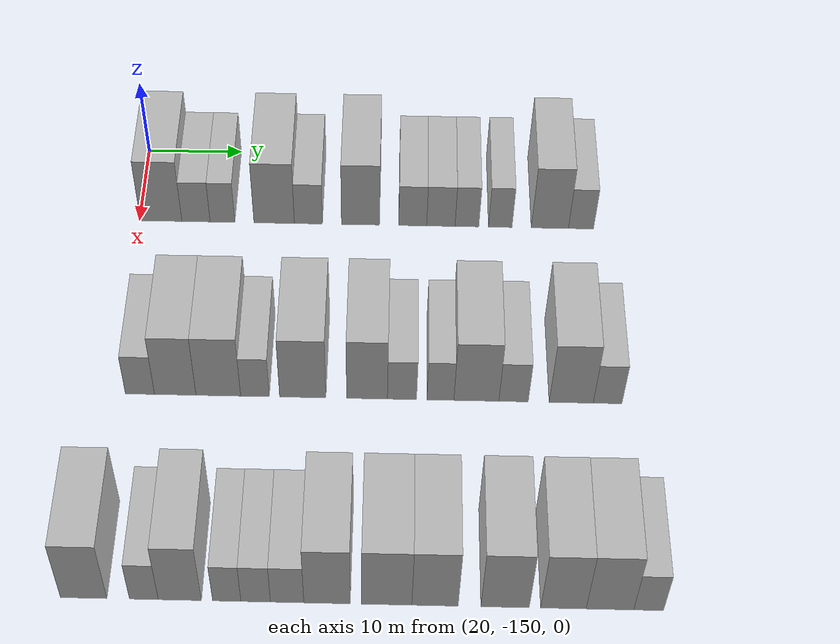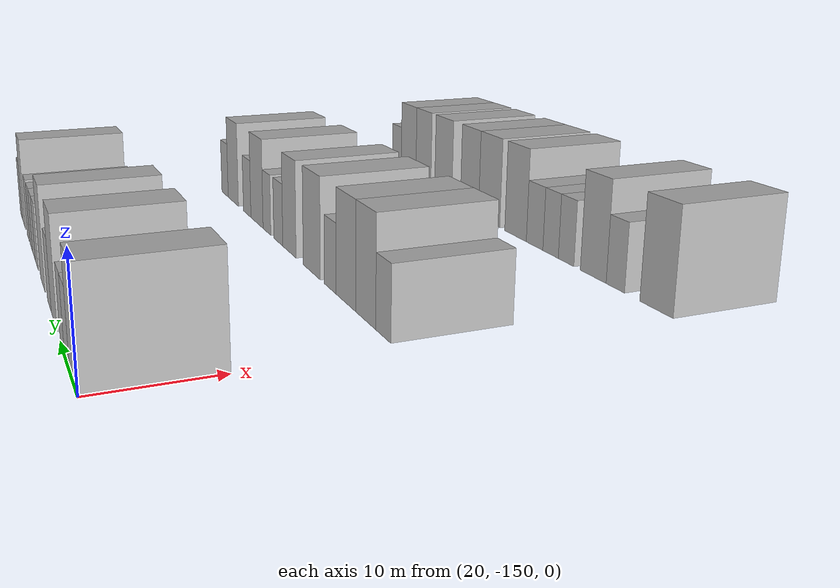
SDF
<sdf version="1.6">
 <world name="default">
  <model name="building_26">
   <static>1</static>
   <pose>25.0000 -147.7740 0 0.000000 0.000000 0.000000</pose>
   <link name="link">
    <pose>0 0 4.50 0 0 0</pose>
    <collision name="collision"><geometry><box><size>10.0000 4.3311 9.0000</size></box></geometry></collision>
    <visual name="visual">
     <cast_shadows>0</cast_shadows>
     <geometry><box><size>10.0000 4.3311 9.0000</size></box></geometry>
     <material>
      <script>
       <uri>model://HANNAS_wall/materials/scripts</uri>
       <uri>model://HANNAS_wall/materials/textures</uri>
       <name>vrc/HANNAS_wall</name>
      </script>
     </material>
    </visual>
   </link>
  </model>
  <model name="building_27">
   <static>1</static>
   <pose>25.0000 -144.1327 0 0.000000 0.000000 0.000000</pose>
   <link name="link">
    <pose>0 0 3.00 0 0 0</pose>
    <collision name="collision"><geometry><box><size>10.0000 2.9514 6.0000</size></box></geometry></collision>
    <visual name="visual">
     <cast_shadows>0</cast_shadows>
     <geometry><box><size>10.0000 2.9514 6.0000</size></box></geometry>
     <material>
      <script>
       <uri>model://HANNAS_wall/materials/scripts</uri>
       <uri>model://HANNAS_wall/materials/textures</uri>
       <name>vrc/HANNAS_wall</name>
      </script>
     </material>
    </visual>
   </link>
  </model>
  <model name="building_28">
   <static>1</static>
   <pose>25.0000 -141.3631 0 0.000000 0.000000 0.000000</pose>
   <link name="link">
    <pose>0 0 3.00 0 0 0</pose>
    <collision name="collision"><geometry><box><size>10.0000 2.5877 6.0000</size></box></geometry></collision>
    <visual name="visual">
     <cast_shadows>0</cast_shadows>
     <geometry><box><size>10.0000 2.5877 6.0000</size></box></geometry>
     <material>
      <script>
       <uri>model://HANNAS_wall/materials/scripts</uri>
       <uri>model://HANNAS_wall/materials/textures</uri>
       <name>vrc/HANNAS_wall</name>
      </script>
     </material>
    </visual>
   </link>
  </model>
  <model name="building_29">
   <static>1</static>
   <pose>25.0000 -135.9635 0 0.000000 0.000000 0.000000</pose>
   <link name="link">
    <pose>0 0 4.50 0 0 0</pose>
    <collision name="collision"><geometry><box><size>10.0000 4.2116 9.0000</size></box></geometry></collision>
    <visual name="visual">
     <cast_shadows>0</cast_shadows>
     <geometry><box><size>10.0000 4.2116 9.0000</size></box></geometry>
     <material>
      <script>
       <uri>model://HANNAS_wall/materials/scripts</uri>
       <uri>model://HANNAS_wall/materials/textures</uri>
       <name>vrc/HANNAS_wall</name>
      </script>
     </material>
    </visual>
   </link>
  </model>
  <model name="building_30">
   <static>1</static>
   <pose>25.0000 -132.3957 0 0.000000 0.000000 0.000000</pose>
   <link name="link">
    <pose>0 0 3.00 0 0 0</pose>
    <collision name="collision"><geometry><box><size>10.0000 2.9239 6.0000</size></box></geometry></collision>
    <visual name="visual">
     <cast_shadows>0</cast_shadows>
     <geometry><box><size>10.0000 2.9239 6.0000</size></box></geometry>
     <material>
      <script>
       <uri>model://HANNAS_wall/materials/scripts</uri>
       <uri>model://HANNAS_wall/materials/textures</uri>
       <name>vrc/HANNAS_wall</name>
      </script>
     </material>
    </visual>
   </link>
  </model>
  <model name="building_31">
   <static>1</static>
   <pose>25.0000 -126.9586 0 0.000000 0.000000 0.000000</pose>
   <link name="link">
    <pose>0 0 4.50 0 0 0</pose>
    <collision name="collision"><geometry><box><size>10.0000 3.9502 9.0000</size></box></geometry></collision>
    <visual name="visual">
     <cast_shadows>0</cast_shadows>
     <geometry><box><size>10.0000 3.9502 9.0000</size></box></geometry>
     <material>
      <script>
       <uri>model://HANNAS_wall/materials/scripts</uri>
       <uri>model://HANNAS_wall/materials/textures</uri>
       <name>vrc/HANNAS_wall</name>
      </script>
     </material>
    </visual>
   </link>
  </model>
  <model name="building_32">
   <static>1</static>
   <pose>25.0000 -121.5272 0 0.000000 0.000000 0.000000</pose>
   <link name="link">
    <pose>0 0 3.00 0 0 0</pose>
    <collision name="collision"><geometry><box><size>10.0000 2.9127 6.0000</size></box></geometry></collision>
    <visual name="visual">
     <cast_shadows>0</cast_shadows>
     <geometry><box><size>10.0000 2.9127 6.0000</size></box></geometry>
     <material>
      <script>
       <uri>model://HANNAS_wall/materials/scripts</uri>
       <uri>model://HANNAS_wall/materials/textures</uri>
       <name>vrc/HANNAS_wall</name>
      </script>
     </material>
    </visual>
   </link>
  </model>
  <model name="building_33">
   <static>1</static>
   <pose>25.0000 -118.5944 0 0.000000 0.000000 0.000000</pose>
   <link name="link">
    <pose>0 0 3.00 0 0 0</pose>
    <collision name="collision"><geometry><box><size>10.0000 2.9529 6.0000</size></box></geometry></collision>
    <visual name="visual">
     <cast_shadows>0</cast_shadows>
     <geometry><box><size>10.0000 2.9529 6.0000</size></box></geometry>
     <material>
      <script>
       <uri>model://HANNAS_wall/materials/scripts</uri>
       <uri>model://HANNAS_wall/materials/textures</uri>
       <name>vrc/HANNAS_wall</name>
      </script>
     </material>
    </visual>
   </link>
  </model>
  <model name="building_34">
   <static>1</static>
   <pose>25.0000 -115.8798 0 0.000000 0.000000 0.000000</pose>
   <link name="link">
    <pose>0 0 3.00 0 0 0</pose>
    <collision name="collision"><geometry><box><size>10.0000 2.4761 6.0000</size></box></geometry></collision>
    <visual name="visual">
     <cast_shadows>0</cast_shadows>
     <geometry><box><size>10.0000 2.4761 6.0000</size></box></geometry>
     <material>
      <script>
       <uri>model://HANNAS_wall/materials/scripts</uri>
       <uri>model://HANNAS_wall/materials/textures</uri>
       <name>vrc/HANNAS_wall</name>
      </script>
     </material>
    </visual>
   </link>
  </model>
  <model name="building_35">
   <static>1</static>
   <pose>25.0000 -112.4168 0 0.000000 0.000000 0.000000</pose>
   <link name="link">
    <pose>0 0 3.00 0 0 0</pose>
    <collision name="collision"><geometry><box><size>10.0000 2.4500 6.0000</size></box></geometry></collision>
    <visual name="visual">
     <cast_shadows>0</cast_shadows>
     <geometry><box><size>10.0000 2.4500 6.0000</size></box></geometry>
     <material>
      <script>
       <uri>model://HANNAS_wall/materials/scripts</uri>
       <uri>model://HANNAS_wall/materials/textures</uri>
       <name>vrc/HANNAS_wall</name>
      </script>
     </material>
    </visual>
   </link>
  </model>
  <model name="building_36">
   <static>1</static>
   <pose>25.0000 -107.2620 0 0.000000 0.000000 0.000000</pose>
   <link name="link">
    <pose>0 0 4.50 0 0 0</pose>
    <collision name="collision"><geometry><box><size>10.0000 3.8595 9.0000</size></box></geometry></collision>
    <visual name="visual">
     <cast_shadows>0</cast_shadows>
     <geometry><box><size>10.0000 3.8595 9.0000</size></box></geometry>
     <material>
      <script>
       <uri>model://HANNAS_wall/materials/scripts</uri>
       <uri>model://HANNAS_wall/materials/textures</uri>
       <name>vrc/HANNAS_wall</name>
      </script>
     </material>
    </visual>
   </link>
  </model>
  <model name="building_37">
   <static>1</static>
   <pose>25.0000 -104.0259 0 0.000000 0.000000 0.000000</pose>
   <link name="link">
    <pose>0 0 3.00 0 0 0</pose>
    <collision name="collision"><geometry><box><size>10.0000 2.6127 6.0000</size></box></geometry></collision>
    <visual name="visual">
     <cast_shadows>0</cast_shadows>
     <geometry><box><size>10.0000 2.6127 6.0000</size></box></geometry>
     <material>
      <script>
       <uri>model://HANNAS_wall/materials/scripts</uri>
       <uri>model://HANNAS_wall/materials/textures</uri>
       <name>vrc/HANNAS_wall</name>
      </script>
     </material>
    </visual>
   </link>
  </model>
  <model name="building_157">
   <static>1</static>
   <pose>47.0000 -147.6617 0 0.000000 0.000000 0.000000</pose>
   <link name="link">
    <pose>0 0 3.00 0 0 0</pose>
    <collision name="collision"><geometry><box><size>10.0000 2.8072 6.0000</size></box></geometry></collision>
    <visual name="visual">
     <cast_shadows>0</cast_shadows>
     <geometry><box><size>10.0000 2.8072 6.0000</size></box></geometry>
     <material>
      <script>
       <uri>model://HANNAS_wall/materials/scripts</uri>
       <uri>model://HANNAS_wall/materials/textures</uri>
       <name>vrc/HANNAS_wall</name>
      </script>
     </material>
    </visual>
   </link>
  </model>
  <model name="building_158">
   <static>1</static>
   <pose>47.0000 -144.2558 0 0.000000 0.000000 0.000000</pose>
   <link name="link">
    <pose>0 0 4.50 0 0 0</pose>
    <collision name="collision"><geometry><box><size>10.0000 4.0046 9.0000</size></box></geometry></collision>
    <visual name="visual">
     <cast_shadows>0</cast_shadows>
     <geometry><box><size>10.0000 4.0046 9.0000</size></box></geometry>
     <material>
      <script>
       <uri>model://HANNAS_wall/materials/scripts</uri>
       <uri>model://HANNAS_wall/materials/textures</uri>
       <name>vrc/HANNAS_wall</name>
      </script>
     </material>
    </visual>
   </link>
  </model>
  <model name="building_159">
   <static>1</static>
   <pose>47.0000 -140.1025 0 0.000000 0.000000 0.000000</pose>
   <link name="link">
    <pose>0 0 4.50 0 0 0</pose>
    <collision name="collision"><geometry><box><size>10.0000 4.3019 9.0000</size></box></geometry></collision>
    <visual name="visual">
     <cast_shadows>0</cast_shadows>
     <geometry><box><size>10.0000 4.3019 9.0000</size></box></geometry>
     <material>
      <script>
       <uri>model://HANNAS_wall/materials/scripts</uri>
       <uri>model://HANNAS_wall/materials/textures</uri>
       <name>vrc/HANNAS_wall</name>
      </script>
     </material>
    </visual>
   </link>
  </model>
  <model name="building_160">
   <static>1</static>
   <pose>47.0000 -136.5706 0 0.000000 0.000000 0.000000</pose>
   <link name="link">
    <pose>0 0 3.00 0 0 0</pose>
    <collision name="collision"><geometry><box><size>10.0000 2.7618 6.0000</size></box></geometry></collision>
    <visual name="visual">
     <cast_shadows>0</cast_shadows>
     <geometry><box><size>10.0000 2.7618 6.0000</size></box></geometry>
     <material>
      <script>
       <uri>model://HANNAS_wall/materials/scripts</uri>
       <uri>model://HANNAS_wall/materials/textures</uri>
       <name>vrc/HANNAS_wall</name>
      </script>
     </material>
    </visual>
   </link>
  </model>
  <model name="building_161">
   <static>1</static>
   <pose>47.0000 -131.9651 0 0.000000 0.000000 0.000000</pose>
   <link name="link">
    <pose>0 0 4.50 0 0 0</pose>
    <collision name="collision"><geometry><box><size>10.0000 4.4493 9.0000</size></box></geometry></collision>
    <visual name="visual">
     <cast_shadows>0</cast_shadows>
     <geometry><box><size>10.0000 4.4493 9.0000</size></box></geometry>
     <material>
      <script>
       <uri>model://HANNAS_wall/materials/scripts</uri>
       <uri>model://HANNAS_wall/materials/textures</uri>
       <name>vrc/HANNAS_wall</name>
      </script>
     </material>
    </visual>
   </link>
  </model>
  <model name="building_162">
   <static>1</static>
   <pose>47.0000 -125.7836 0 0.000000 0.000000 0.000000</pose>
   <link name="link">
    <pose>0 0 4.50 0 0 0</pose>
    <collision name="collision"><geometry><box><size>10.0000 3.9136 9.0000</size></box></geometry></collision>
    <visual name="visual">
     <cast_shadows>0</cast_shadows>
     <geometry><box><size>10.0000 3.9136 9.0000</size></box></geometry>
     <material>
      <script>
       <uri>model://HANNAS_wall/materials/scripts</uri>
       <uri>model://HANNAS_wall/materials/textures</uri>
       <name>vrc/HANNAS_wall</name>
      </script>
     </material>
    </visual>
   </link>
  </model>
  <model name="building_163">
   <static>1</static>
   <pose>47.0000 -122.4248 0 0.000000 0.000000 0.000000</pose>
   <link name="link">
    <pose>0 0 3.00 0 0 0</pose>
    <collision name="collision"><geometry><box><size>10.0000 2.8041 6.0000</size></box></geometry></collision>
    <visual name="visual">
     <cast_shadows>0</cast_shadows>
     <geometry><box><size>10.0000 2.8041 6.0000</size></box></geometry>
     <material>
      <script>
       <uri>model://HANNAS_wall/materials/scripts</uri>
       <uri>model://HANNAS_wall/materials/textures</uri>
       <name>vrc/HANNAS_wall</name>
      </script>
     </material>
    </visual>
   </link>
  </model>
  <model name="building_164">
   <static>1</static>
   <pose>47.0000 -118.7318 0 0.000000 0.000000 0.000000</pose>
   <link name="link">
    <pose>0 0 3.00 0 0 0</pose>
    <collision name="collision"><geometry><box><size>10.0000 2.5820 6.0000</size></box></geometry></collision>
    <visual name="visual">
     <cast_shadows>0</cast_shadows>
     <geometry><box><size>10.0000 2.5820 6.0000</size></box></geometry>
     <material>
      <script>
       <uri>model://HANNAS_wall/materials/scripts</uri>
       <uri>model://HANNAS_wall/materials/textures</uri>
       <name>vrc/HANNAS_wall</name>
      </script>
     </material>
    </visual>
   </link>
  </model>
  <model name="building_165">
   <static>1</static>
   <pose>47.0000 -115.2786 0 0.000000 0.000000 0.000000</pose>
   <link name="link">
    <pose>0 0 4.50 0 0 0</pose>
    <collision name="collision"><geometry><box><size>10.0000 4.3243 9.0000</size></box></geometry></collision>
    <visual name="visual">
     <cast_shadows>0</cast_shadows>
     <geometry><box><size>10.0000 4.3243 9.0000</size></box></geometry>
     <material>
      <script>
       <uri>model://HANNAS_wall/materials/scripts</uri>
       <uri>model://HANNAS_wall/materials/textures</uri>
       <name>vrc/HANNAS_wall</name>
      </script>
     </material>
    </visual>
   </link>
  </model>
  <model name="building_166">
   <static>1</static>
   <pose>47.0000 -111.7077 0 0.000000 0.000000 0.000000</pose>
   <link name="link">
    <pose>0 0 3.00 0 0 0</pose>
    <collision name="collision"><geometry><box><size>10.0000 2.8174 6.0000</size></box></geometry></collision>
    <visual name="visual">
     <cast_shadows>0</cast_shadows>
     <geometry><box><size>10.0000 2.8174 6.0000</size></box></geometry>
     <material>
      <script>
       <uri>model://HANNAS_wall/materials/scripts</uri>
       <uri>model://HANNAS_wall/materials/textures</uri>
       <name>vrc/HANNAS_wall</name>
      </script>
     </material>
    </visual>
   </link>
  </model>
  <model name="building_167">
   <static>1</static>
   <pose>47.0000 -106.1836 0 0.000000 0.000000 0.000000</pose>
   <link name="link">
    <pose>0 0 4.50 0 0 0</pose>
    <collision name="collision"><geometry><box><size>10.0000 4.2308 9.0000</size></box></geometry></collision>
    <visual name="visual">
     <cast_shadows>0</cast_shadows>
     <geometry><box><size>10.0000 4.2308 9.0000</size></box></geometry>
     <material>
      <script>
       <uri>model://HANNAS_wall/materials/scripts</uri>
       <uri>model://HANNAS_wall/materials/textures</uri>
       <name>vrc/HANNAS_wall</name>
      </script>
     </material>
    </visual>
   </link>
  </model>
  <model name="building_168">
   <static>1</static>
   <pose>47.0000 -102.6951 0 0.000000 0.000000 0.000000</pose>
   <link name="link">
    <pose>0 0 3.00 0 0 0</pose>
    <collision name="collision"><geometry><box><size>10.0000 2.7462 6.0000</size></box></geometry></collision>
    <visual name="visual">
     <cast_shadows>0</cast_shadows>
     <geometry><box><size>10.0000 2.7462 6.0000</size></box></geometry>
     <material>
      <script>
       <uri>model://HANNAS_wall/materials/scripts</uri>
       <uri>model://HANNAS_wall/materials/textures</uri>
       <name>vrc/HANNAS_wall</name>
      </script>
     </material>
    </visual>
   </link>
  </model>
  <model name="building_272">
   <static>1</static>
   <pose>69.0000 -150.3221 0 0.000000 0.000000 0.000000</pose>
   <link name="link">
    <pose>0 0 4.50 0 0 0</pose>
    <collision name="collision"><geometry><box><size>10.0000 4.1133 9.0000</size></box></geometry></collision>
    <visual name="visual">
     <cast_shadows>0</cast_shadows>
     <geometry><box><size>10.0000 4.1133 9.0000</size></box></geometry>
     <material>
      <script>
       <uri>model://HANNAS_wall/materials/scripts</uri>
       <uri>model://HANNAS_wall/materials/textures</uri>
       <name>vrc/HANNAS_wall</name>
      </script>
     </material>
    </visual>
   </link>
  </model>
  <model name="building_273">
   <static>1</static>
   <pose>69.0000 -144.9937 0 0.000000 0.000000 0.000000</pose>
   <link name="link">
    <pose>0 0 3.00 0 0 0</pose>
    <collision name="collision"><geometry><box><size>10.0000 2.5436 6.0000</size></box></geometry></collision>
    <visual name="visual">
     <cast_shadows>0</cast_shadows>
     <geometry><box><size>10.0000 2.5436 6.0000</size></box></geometry>
     <material>
      <script>
       <uri>model://HANNAS_wall/materials/scripts</uri>
       <uri>model://HANNAS_wall/materials/textures</uri>
       <name>vrc/HANNAS_wall</name>
      </script>
     </material>
    </visual>
   </link>
  </model>
  <model name="building_274">
   <static>1</static>
   <pose>69.0000 -141.8155 0 0.000000 0.000000 0.000000</pose>
   <link name="link">
    <pose>0 0 4.50 0 0 0</pose>
    <collision name="collision"><geometry><box><size>10.0000 3.8128 9.0000</size></box></geometry></collision>
    <visual name="visual">
     <cast_shadows>0</cast_shadows>
     <geometry><box><size>10.0000 3.8128 9.0000</size></box></geometry>
     <material>
      <script>
       <uri>model://HANNAS_wall/materials/scripts</uri>
       <uri>model://HANNAS_wall/materials/textures</uri>
       <name>vrc/HANNAS_wall</name>
      </script>
     </material>
    </visual>
   </link>
  </model>
  <model name="building_275">
   <static>1</static>
   <pose>69.0000 -137.6601 0 0.000000 0.000000 0.000000</pose>
   <link name="link">
    <pose>0 0 3.00 0 0 0</pose>
    <collision name="collision"><geometry><box><size>10.0000 2.4981 6.0000</size></box></geometry></collision>
    <visual name="visual">
     <cast_shadows>0</cast_shadows>
     <geometry><box><size>10.0000 2.4981 6.0000</size></box></geometry>
     <material>
      <script>
       <uri>model://HANNAS_wall/materials/scripts</uri>
       <uri>model://HANNAS_wall/materials/textures</uri>
       <name>vrc/HANNAS_wall</name>
      </script>
     </material>
    </visual>
   </link>
  </model>
  <model name="building_276">
   <static>1</static>
   <pose>69.0000 -135.1079 0 0.000000 0.000000 0.000000</pose>
   <link name="link">
    <pose>0 0 3.00 0 0 0</pose>
    <collision name="collision"><geometry><box><size>10.0000 2.6062 6.0000</size></box></geometry></collision>
    <visual name="visual">
     <cast_shadows>0</cast_shadows>
     <geometry><box><size>10.0000 2.6062 6.0000</size></box></geometry>
     <material>
      <script>
       <uri>model://HANNAS_wall/materials/scripts</uri>
       <uri>model://HANNAS_wall/materials/textures</uri>
       <name>vrc/HANNAS_wall</name>
      </script>
     </material>
    </visual>
   </link>
  </model>
  <model name="building_277">
   <static>1</static>
   <pose>69.0000 -132.3329 0 0.000000 0.000000 0.000000</pose>
   <link name="link">
    <pose>0 0 3.00 0 0 0</pose>
    <collision name="collision"><geometry><box><size>10.0000 2.9438 6.0000</size></box></geometry></collision>
    <visual name="visual">
     <cast_shadows>0</cast_shadows>
     <geometry><box><size>10.0000 2.9438 6.0000</size></box></geometry>
     <material>
      <script>
       <uri>model://HANNAS_wall/materials/scripts</uri>
       <uri>model://HANNAS_wall/materials/textures</uri>
       <name>vrc/HANNAS_wall</name>
      </script>
     </material>
    </visual>
   </link>
  </model>
  <model name="building_278">
   <static>1</static>
   <pose>69.0000 -128.8132 0 0.000000 0.000000 0.000000</pose>
   <link name="link">
    <pose>0 0 4.50 0 0 0</pose>
    <collision name="collision"><geometry><box><size>10.0000 4.0956 9.0000</size></box></geometry></collision>
    <visual name="visual">
     <cast_shadows>0</cast_shadows>
     <geometry><box><size>10.0000 4.0956 9.0000</size></box></geometry>
     <material>
      <script>
       <uri>model://HANNAS_wall/materials/scripts</uri>
       <uri>model://HANNAS_wall/materials/textures</uri>
       <name>vrc/HANNAS_wall</name>
      </script>
     </material>
    </visual>
   </link>
  </model>
  <model name="building_279">
   <static>1</static>
   <pose>69.0000 -123.5518 0 0.000000 0.000000 0.000000</pose>
   <link name="link">
    <pose>0 0 4.50 0 0 0</pose>
    <collision name="collision"><geometry><box><size>10.0000 4.4272 9.0000</size></box></geometry></collision>
    <visual name="visual">
     <cast_shadows>0</cast_shadows>
     <geometry><box><size>10.0000 4.4272 9.0000</size></box></geometry>
     <material>
      <script>
       <uri>model://HANNAS_wall/materials/scripts</uri>
       <uri>model://HANNAS_wall/materials/textures</uri>
       <name>vrc/HANNAS_wall</name>
      </script>
     </material>
    </visual>
   </link>
  </model>
  <model name="building_280">
   <static>1</static>
   <pose>69.0000 -119.3013 0 0.000000 0.000000 0.000000</pose>
   <link name="link">
    <pose>0 0 4.50 0 0 0</pose>
    <collision name="collision"><geometry><box><size>10.0000 4.0738 9.0000</size></box></geometry></collision>
    <visual name="visual">
     <cast_shadows>0</cast_shadows>
     <geometry><box><size>10.0000 4.0738 9.0000</size></box></geometry>
     <material>
      <script>
       <uri>model://HANNAS_wall/materials/scripts</uri>
       <uri>model://HANNAS_wall/materials/textures</uri>
       <name>vrc/HANNAS_wall</name>
      </script>
     </material>
    </visual>
   </link>
  </model>
  <model name="building_281">
   <static>1</static>
   <pose>69.0000 -113.1372 0 0.000000 0.000000 0.000000</pose>
   <link name="link">
    <pose>0 0 4.50 0 0 0</pose>
    <collision name="collision"><geometry><box><size>10.0000 4.2545 9.0000</size></box></geometry></collision>
    <visual name="visual">
     <cast_shadows>0</cast_shadows>
     <geometry><box><size>10.0000 4.2545 9.0000</size></box></geometry>
     <material>
      <script>
       <uri>model://HANNAS_wall/materials/scripts</uri>
       <uri>model://HANNAS_wall/materials/textures</uri>
       <name>vrc/HANNAS_wall</name>
      </script>
     </material>
    </visual>
   </link>
  </model>
  <model name="building_282">
   <static>1</static>
   <pose>69.0000 -108.0111 0 0.000000 0.000000 0.000000</pose>
   <link name="link">
    <pose>0 0 4.50 0 0 0</pose>
    <collision name="collision"><geometry><box><size>10.0000 3.9977 9.0000</size></box></geometry></collision>
    <visual name="visual">
     <cast_shadows>0</cast_shadows>
     <geometry><box><size>10.0000 3.9977 9.0000</size></box></geometry>
     <material>
      <script>
       <uri>model://HANNAS_wall/materials/scripts</uri>
       <uri>model://HANNAS_wall/materials/textures</uri>
       <name>vrc/HANNAS_wall</name>
      </script>
     </material>
    </visual>
   </link>
  </model>
  <model name="building_283">
   <static>1</static>
   <pose>69.0000 -103.9249 0 0.000000 0.000000 0.000000</pose>
   <link name="link">
    <pose>0 0 4.50 0 0 0</pose>
    <collision name="collision"><geometry><box><size>10.0000 4.1747 9.0000</size></box></geometry></collision>
    <visual name="visual">
     <cast_shadows>0</cast_shadows>
     <geometry><box><size>10.0000 4.1747 9.0000</size></box></geometry>
     <material>
      <script>
       <uri>model://HANNAS_wall/materials/scripts</uri>
       <uri>model://HANNAS_wall/materials/textures</uri>
       <name>vrc/HANNAS_wall</name>
      </script>
     </material>
    </visual>
   </link>
  </model>
  <model name="building_284">
   <static>1</static>
   <pose>69.0000 -100.5291 0 0.000000 0.000000 0.000000</pose>
   <link name="link">
    <pose>0 0 3.00 0 0 0</pose>
    <collision name="collision"><geometry><box><size>10.0000 2.6168 6.0000</size></box></geometry></collision>
    <visual name="visual">
     <cast_shadows>0</cast_shadows>
     <geometry><box><size>10.0000 2.6168 6.0000</size></box></geometry>
     <material>
      <script>
       <uri>model://HANNAS_wall/materials/scripts</uri>
       <uri>model://HANNAS_wall/materials/textures</uri>
       <name>vrc/HANNAS_wall</name>
      </script>
     </material>
    </visual>
   </link>
  </model>
 </world>
</sdf>
